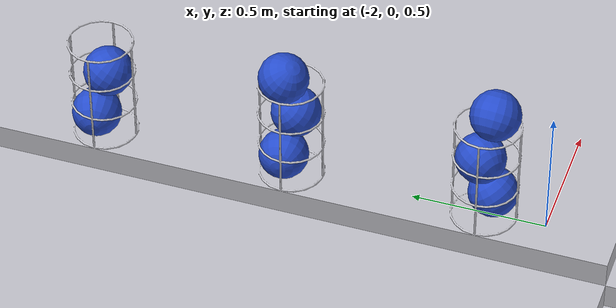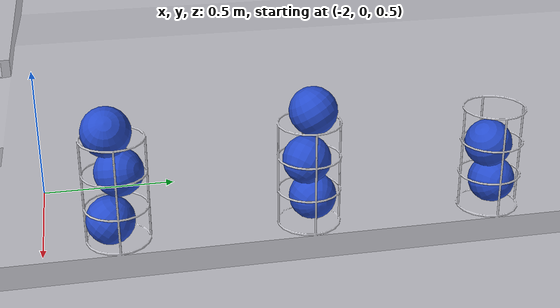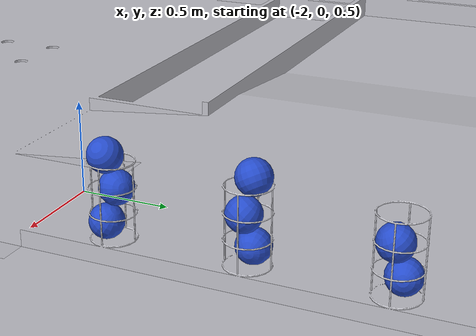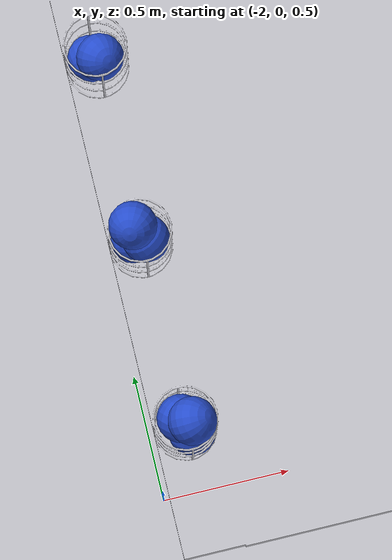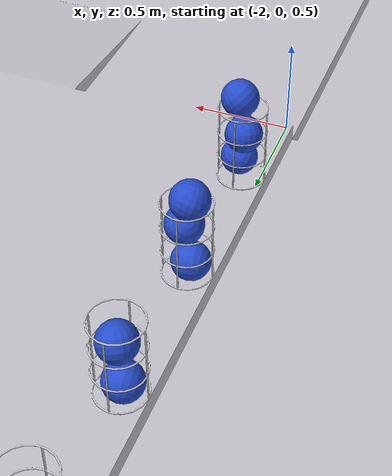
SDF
<sdf version="1.7">
 <world name="default">
  <model name="ground_plane">
   <static>1</static>
   <link name="link">
    <collision name="collision">
     <geometry><plane><normal>0 0 1</normal><size>100 100</size></plane></geometry>
     <surface><friction><ode><mu>100</mu><mu2>50</mu2></ode></friction></surface>
    </collision>
    <visual name="visual">
     <cast_shadows>0</cast_shadows>
     <geometry><plane><normal>0 0 1</normal><size>100 100</size></plane></geometry>
     <material>
      <script><uri>file://media/materials/scripts/gazebo.material</uri><name>Gazebo/Grey</name></script>
     </material>
    </visual>
   </link>
  </model>
  <model name="blue_ball">
   <link name="link">
    <inertial>
     <mass>0.3</mass>
     <inertia>
      <ixx>0.0029749</ixx>
      <ixy>0</ixy>
      <ixz>0</ixz>
      <iyy>0.0029749</iyy>
      <iyz>0</iyz>
      <izz>0.0029749</izz>
     </inertia>
    </inertial>
    <visual name="visual">
     <geometry><sphere><radius>0.095</radius></sphere></geometry>
     <material>
      <script><name>Gazebo/Blue</name><uri>file://media/materials/scripts/gazebo.material</uri></script>
      <shader type="pixel"><normal_map>__default__</normal_map></shader>
      <ambient>0.071 0.31 0.988 1</ambient>
      <diffuse>0.7 0.7 0.7 1</diffuse>
      <specular>0.01 0.01 0.01 1</specular>
      <emissive>0 0 0 1</emissive>
     </material>
    </visual>
    <collision name="collision">
     <geometry><sphere><radius>0.095</radius></sphere></geometry>
     <surface>
      <friction>
       <ode><mu>1</mu><mu2>1</mu2><fdir1>0 0 0</fdir1><slip1>0</slip1><slip2>0</slip2></ode>
       <torsional>
        <coefficient>1</coefficient>
        <patch_radius>0</patch_radius>
        <surface_radius>0</surface_radius>
        <use_patch_radius>1</use_patch_radius>
        <ode><slip>0</slip></ode>
       </torsional>
      </friction>
      <bounce><restitution_coefficient>0</restitution_coefficient><threshold>1e+06</threshold></bounce>
      <contact>
       <collide_without_contact>0</collide_without_contact>
       <collide_without_contact_bitmask>1</collide_without_contact_bitmask>
       <collide_bitmask>1</collide_bitmask>
       <ode>
        <soft_cfm>0</soft_cfm>
        <soft_erp>0.2</soft_erp>
        <kp>1e+13</kp>
        <kd>1</kd>
        <max_vel>0.01</max_vel>
        <min_depth>0</min_depth>
       </ode>
       <bullet>
        <split_impulse>1</split_impulse>
        <split_impulse_penetration_threshold>-0.01</split_impulse_penetration_threshold>
        <soft_cfm>0</soft_cfm>
        <soft_erp>0.2</soft_erp>
        <kp>1e+13</kp>
        <kd>1</kd>
       </bullet>
      </contact>
     </surface>
    </collision>
   </link>
   <static>0</static>
   <pose>-1.87471 1.04002 0.449335 -1.55224 0.285766 1.66311</pose>
  </model>
  <model name="blue_ball_clone">
   <link name="link">
    <inertial>
     <mass>0.3</mass>
     <inertia>
      <ixx>0.0029749</ixx>
      <ixy>0</ixy>
      <ixz>0</ixz>
      <iyy>0.0029749</iyy>
      <iyz>0</iyz>
      <izz>0.0029749</izz>
     </inertia>
    </inertial>
    <visual name="visual">
     <geometry><sphere><radius>0.095</radius></sphere></geometry>
     <material>
      <script><name>Gazebo/Blue</name><uri>file://media/materials/scripts/gazebo.material</uri></script>
      <shader type="pixel"><normal_map>__default__</normal_map></shader>
      <ambient>0.071 0.31 0.988 1</ambient>
      <diffuse>0.7 0.7 0.7 1</diffuse>
      <specular>0.01 0.01 0.01 1</specular>
      <emissive>0 0 0 1</emissive>
     </material>
    </visual>
    <collision name="collision">
     <geometry><sphere><radius>0.095</radius></sphere></geometry>
     <surface>
      <friction>
       <ode><mu>0.19</mu><mu2>0.19</mu2><fdir1>0 0 0</fdir1><slip1>0</slip1><slip2>0</slip2></ode>
       <torsional>
        <coefficient>1</coefficient>
        <patch_radius>0</patch_radius>
        <surface_radius>0</surface_radius>
        <use_patch_radius>1</use_patch_radius>
        <ode><slip>0</slip></ode>
       </torsional>
      </friction>
      <bounce><restitution_coefficient>0</restitution_coefficient><threshold>1e+06</threshold></bounce>
      <contact>
       <collide_without_contact>0</collide_without_contact>
       <collide_without_contact_bitmask>1</collide_without_contact_bitmask>
       <collide_bitmask>1</collide_bitmask>
       <ode>
        <soft_cfm>0</soft_cfm>
        <soft_erp>0.2</soft_erp>
        <kp>1e+13</kp>
        <kd>1</kd>
        <max_vel>0.01</max_vel>
        <min_depth>0</min_depth>
       </ode>
       <bullet>
        <split_impulse>1</split_impulse>
        <split_impulse_penetration_threshold>-0.01</split_impulse_penetration_threshold>
        <soft_cfm>0</soft_cfm>
        <soft_erp>0.2</soft_erp>
        <kp>1e+13</kp>
        <kd>1</kd>
       </bullet>
      </contact>
     </surface>
    </collision>
   </link>
   <static>0</static>
   <pose>-1.82988 1.00523 0.630661 -3.1414 0.771417 2.21019</pose>
  </model>
  <model name="blue_ball_clone_clone_clone">
   <link name="link">
    <inertial>
     <mass>0.3</mass>
     <inertia>
      <ixx>0.0029749</ixx>
      <ixy>0</ixy>
      <ixz>0</ixz>
      <iyy>0.0029749</iyy>
      <iyz>0</iyz>
      <izz>0.0029749</izz>
     </inertia>
    </inertial>
    <visual name="visual">
     <geometry><sphere><radius>0.095</radius></sphere></geometry>
     <material>
      <script><name>Gazebo/Blue</name><uri>file://media/materials/scripts/gazebo.material</uri></script>
      <shader type="pixel"><normal_map>__default__</normal_map></shader>
      <ambient>0.071 0.31 0.988 1</ambient>
      <diffuse>0.7 0.7 0.7 1</diffuse>
      <specular>0.01 0.01 0.01 1</specular>
      <emissive>0 0 0 1</emissive>
     </material>
    </visual>
    <collision name="collision">
     <geometry><sphere><radius>0.095</radius></sphere></geometry>
     <surface>
      <friction>
       <ode><mu>0.19</mu><mu2>0.19</mu2><fdir1>0 0 0</fdir1><slip1>0</slip1><slip2>0</slip2></ode>
       <torsional>
        <coefficient>1</coefficient>
        <patch_radius>0</patch_radius>
        <surface_radius>0</surface_radius>
        <use_patch_radius>1</use_patch_radius>
        <ode><slip>0</slip></ode>
       </torsional>
      </friction>
      <bounce><restitution_coefficient>0</restitution_coefficient><threshold>1e+06</threshold></bounce>
      <contact>
       <collide_without_contact>0</collide_without_contact>
       <collide_without_contact_bitmask>1</collide_without_contact_bitmask>
       <collide_bitmask>1</collide_bitmask>
       <ode>
        <soft_cfm>0</soft_cfm>
        <soft_erp>0.2</soft_erp>
        <kp>1e+13</kp>
        <kd>1</kd>
        <max_vel>0.01</max_vel>
        <min_depth>0</min_depth>
       </ode>
       <bullet>
        <split_impulse>1</split_impulse>
        <split_impulse_penetration_threshold>-0.01</split_impulse_penetration_threshold>
        <soft_cfm>0</soft_cfm>
        <soft_erp>0.2</soft_erp>
        <kp>1e+13</kp>
        <kd>1</kd>
       </bullet>
      </contact>
     </surface>
    </collision>
   </link>
   <static>0</static>
   <pose>-1.82726 0.242568 0.449507 0.11787 -0.659999 -1.84908</pose>
  </model>
  <model name="blue_ball_clone_clone_clone_0">
   <link name="link">
    <inertial>
     <mass>0.3</mass>
     <inertia>
      <ixx>0.0029749</ixx>
      <ixy>0</ixy>
      <ixz>0</ixz>
      <iyy>0.0029749</iyy>
      <iyz>0</iyz>
      <izz>0.0029749</izz>
     </inertia>
    </inertial>
    <visual name="visual">
     <geometry><sphere><radius>0.095</radius></sphere></geometry>
     <material>
      <script><name>Gazebo/Blue</name><uri>file://media/materials/scripts/gazebo.material</uri></script>
      <shader type="pixel"><normal_map>__default__</normal_map></shader>
      <ambient>0.071 0.31 0.988 1</ambient>
      <diffuse>0.7 0.7 0.7 1</diffuse>
      <specular>0.01 0.01 0.01 1</specular>
      <emissive>0 0 0 1</emissive>
     </material>
    </visual>
    <collision name="collision">
     <geometry><sphere><radius>0.095</radius></sphere></geometry>
     <surface>
      <friction>
       <ode><mu>0.19</mu><mu2>0.19</mu2><fdir1>0 0 0</fdir1><slip1>0</slip1><slip2>0</slip2></ode>
       <torsional>
        <coefficient>1</coefficient>
        <patch_radius>0</patch_radius>
        <surface_radius>0</surface_radius>
        <use_patch_radius>1</use_patch_radius>
        <ode><slip>0</slip></ode>
       </torsional>
      </friction>
      <bounce><restitution_coefficient>0</restitution_coefficient><threshold>1e+06</threshold></bounce>
      <contact>
       <collide_without_contact>0</collide_without_contact>
       <collide_without_contact_bitmask>1</collide_without_contact_bitmask>
       <collide_bitmask>1</collide_bitmask>
       <ode>
        <soft_cfm>0</soft_cfm>
        <soft_erp>0.2</soft_erp>
        <kp>1e+13</kp>
        <kd>1</kd>
        <max_vel>0.01</max_vel>
        <min_depth>0</min_depth>
       </ode>
       <bullet>
        <split_impulse>1</split_impulse>
        <split_impulse_penetration_threshold>-0.01</split_impulse_penetration_threshold>
        <soft_cfm>0</soft_cfm>
        <soft_erp>0.2</soft_erp>
        <kp>1e+13</kp>
        <kd>1</kd>
       </bullet>
      </contact>
     </surface>
    </collision>
   </link>
   <static>0</static>
   <pose>-1.86196 0.287273 0.63079 -2.12655 -1.05097 3.01774</pose>
  </model>
  <model name="blue_ball_clone_clone">
   <link name="link">
    <inertial>
     <mass>0.3</mass>
     <inertia>
      <ixx>0.0029749</ixx>
      <ixy>0</ixy>
      <ixz>0</ixz>
      <iyy>0.0029749</iyy>
      <iyz>0</iyz>
      <izz>0.0029749</izz>
     </inertia>
    </inertial>
    <visual name="visual">
     <geometry><sphere><radius>0.095</radius></sphere></geometry>
     <material>
      <script><name>Gazebo/Blue</name><uri>file://media/materials/scripts/gazebo.material</uri></script>
      <shader type="pixel"><normal_map>__default__</normal_map></shader>
      <ambient>0.071 0.31 0.988 1</ambient>
      <diffuse>0.7 0.7 0.7 1</diffuse>
      <specular>0.01 0.01 0.01 1</specular>
      <emissive>0 0 0 1</emissive>
     </material>
    </visual>
    <collision name="collision">
     <geometry><sphere><radius>0.095</radius></sphere></geometry>
     <surface>
      <friction>
       <ode><mu>0.09</mu><mu2>0.09</mu2><fdir1>0 0 0</fdir1><slip1>0</slip1><slip2>0</slip2></ode>
       <torsional>
        <coefficient>1</coefficient>
        <patch_radius>0</patch_radius>
        <surface_radius>0</surface_radius>
        <use_patch_radius>1</use_patch_radius>
        <ode><slip>0</slip></ode>
       </torsional>
      </friction>
      <bounce><restitution_coefficient>0</restitution_coefficient><threshold>1e+06</threshold></bounce>
      <contact>
       <collide_without_contact>0</collide_without_contact>
       <collide_without_contact_bitmask>1</collide_without_contact_bitmask>
       <collide_bitmask>1</collide_bitmask>
       <ode>
        <soft_cfm>0</soft_cfm>
        <soft_erp>0.2</soft_erp>
        <kp>1e+13</kp>
        <kd>1</kd>
        <max_vel>0.01</max_vel>
        <min_depth>0</min_depth>
       </ode>
       <bullet>
        <split_impulse>1</split_impulse>
        <split_impulse_penetration_threshold>-0.01</split_impulse_penetration_threshold>
        <soft_cfm>0</soft_cfm>
        <soft_erp>0.2</soft_erp>
        <kp>1e+13</kp>
        <kd>1</kd>
       </bullet>
      </contact>
     </surface>
    </collision>
   </link>
   <static>0</static>
   <pose>-1.87136 1.03819 0.812995 -0.476084 -0.331801 2.13087</pose>
  </model>
  <model name="blue_ball_clone_clone_clone_1">
   <link name="link">
    <inertial>
     <mass>0.3</mass>
     <inertia>
      <ixx>0.0029749</ixx>
      <ixy>0</ixy>
      <ixz>0</ixz>
      <iyy>0.0029749</iyy>
      <iyz>0</iyz>
      <izz>0.0029749</izz>
     </inertia>
    </inertial>
    <visual name="visual">
     <geometry><sphere><radius>0.095</radius></sphere></geometry>
     <material>
      <script><name>Gazebo/Blue</name><uri>file://media/materials/scripts/gazebo.material</uri></script>
      <shader type="pixel"><normal_map>__default__</normal_map></shader>
      <ambient>0.071 0.31 0.988 1</ambient>
      <diffuse>0.7 0.7 0.7 1</diffuse>
      <specular>0.01 0.01 0.01 1</specular>
      <emissive>0 0 0 1</emissive>
     </material>
    </visual>
    <collision name="collision">
     <geometry><sphere><radius>0.095</radius></sphere></geometry>
     <surface>
      <friction>
       <ode><mu>0.09</mu><mu2>0.09</mu2><fdir1>0 0 0</fdir1><slip1>0</slip1><slip2>0</slip2></ode>
       <torsional>
        <coefficient>1</coefficient>
        <patch_radius>0</patch_radius>
        <surface_radius>0</surface_radius>
        <use_patch_radius>1</use_patch_radius>
        <ode><slip>0</slip></ode>
       </torsional>
      </friction>
      <bounce><restitution_coefficient>0</restitution_coefficient><threshold>1e+06</threshold></bounce>
      <contact>
       <collide_without_contact>0</collide_without_contact>
       <collide_without_contact_bitmask>1</collide_without_contact_bitmask>
       <collide_bitmask>1</collide_bitmask>
       <ode>
        <soft_cfm>0</soft_cfm>
        <soft_erp>0.2</soft_erp>
        <kp>1e+13</kp>
        <kd>1</kd>
        <max_vel>0.01</max_vel>
        <min_depth>0</min_depth>
       </ode>
       <bullet>
        <split_impulse>1</split_impulse>
        <split_impulse_penetration_threshold>-0.01</split_impulse_penetration_threshold>
        <soft_cfm>0</soft_cfm>
        <soft_erp>0.2</soft_erp>
        <kp>1e+13</kp>
        <kd>1</kd>
       </bullet>
      </contact>
     </surface>
    </collision>
   </link>
   <static>0</static>
   <pose>-1.82523 0.24948 0.813336 -2.3042 0.069586 1.43497</pose>
  </model>
  <model name="blue_ball_clone_clone_clone_1_clone">
   <link name="link">
    <inertial>
     <mass>0.3</mass>
     <inertia>
      <ixx>0.0029749</ixx>
      <ixy>0</ixy>
      <ixz>0</ixz>
      <iyy>0.0029749</iyy>
      <iyz>0</iyz>
      <izz>0.0029749</izz>
     </inertia>
    </inertial>
    <visual name="visual">
     <geometry><sphere><radius>0.095</radius></sphere></geometry>
     <material>
      <script><name>Gazebo/Blue</name><uri>file://media/materials/scripts/gazebo.material</uri></script>
      <shader type="pixel"><normal_map>__default__</normal_map></shader>
      <ambient>0.071 0.31 0.988 1</ambient>
      <diffuse>0.7 0.7 0.7 1</diffuse>
      <specular>0.01 0.01 0.01 1</specular>
      <emissive>0 0 0 1</emissive>
     </material>
    </visual>
    <collision name="collision">
     <geometry><sphere><radius>0.095</radius></sphere></geometry>
     <surface>
      <friction>
       <ode><mu>0.09</mu><mu2>0.09</mu2><fdir1>0 0 0</fdir1><slip1>0</slip1><slip2>0</slip2></ode>
       <torsional>
        <coefficient>1</coefficient>
        <patch_radius>0</patch_radius>
        <surface_radius>0</surface_radius>
        <use_patch_radius>1</use_patch_radius>
        <ode><slip>0</slip></ode>
       </torsional>
      </friction>
      <bounce><restitution_coefficient>0</restitution_coefficient><threshold>1e+06</threshold></bounce>
      <contact>
       <collide_without_contact>0</collide_without_contact>
       <collide_without_contact_bitmask>1</collide_without_contact_bitmask>
       <collide_bitmask>1</collide_bitmask>
       <ode>
        <soft_cfm>0</soft_cfm>
        <soft_erp>0.2</soft_erp>
        <kp>1e+13</kp>
        <kd>1</kd>
        <max_vel>0.01</max_vel>
        <min_depth>0</min_depth>
       </ode>
       <bullet>
        <split_impulse>1</split_impulse>
        <split_impulse_penetration_threshold>-0.01</split_impulse_penetration_threshold>
        <soft_cfm>0</soft_cfm>
        <soft_erp>0.2</soft_erp>
        <kp>1e+13</kp>
        <kd>1</kd>
       </bullet>
      </contact>
     </surface>
    </collision>
   </link>
   <static>0</static>
   <pose>-1.8728 1.79184 0.449504 2.01102 1.04737 -1.01203</pose>
  </model>
  <model name="blue_ball_clone_clone_clone_1_clone_0">
   <link name="link">
    <inertial>
     <mass>0.3</mass>
     <inertia>
      <ixx>0.0029749</ixx>
      <ixy>0</ixy>
      <ixz>0</ixz>
      <iyy>0.0029749</iyy>
      <iyz>0</iyz>
      <izz>0.0029749</izz>
     </inertia>
    </inertial>
    <visual name="visual">
     <geometry><sphere><radius>0.095</radius></sphere></geometry>
     <material>
      <script><name>Gazebo/Blue</name><uri>file://media/materials/scripts/gazebo.material</uri></script>
      <shader type="pixel"><normal_map>__default__</normal_map></shader>
      <ambient>0.071 0.31 0.988 1</ambient>
      <diffuse>0.7 0.7 0.7 1</diffuse>
      <specular>0.01 0.01 0.01 1</specular>
      <emissive>0 0 0 1</emissive>
     </material>
    </visual>
    <collision name="collision">
     <geometry><sphere><radius>0.095</radius></sphere></geometry>
     <surface>
      <friction>
       <ode><mu>0.09</mu><mu2>0.09</mu2><fdir1>0 0 0</fdir1><slip1>0</slip1><slip2>0</slip2></ode>
       <torsional>
        <coefficient>1</coefficient>
        <patch_radius>0</patch_radius>
        <surface_radius>0</surface_radius>
        <use_patch_radius>1</use_patch_radius>
        <ode><slip>0</slip></ode>
       </torsional>
      </friction>
      <bounce><restitution_coefficient>0</restitution_coefficient><threshold>1e+06</threshold></bounce>
      <contact>
       <collide_without_contact>0</collide_without_contact>
       <collide_without_contact_bitmask>1</collide_without_contact_bitmask>
       <collide_bitmask>1</collide_bitmask>
       <ode>
        <soft_cfm>0</soft_cfm>
        <soft_erp>0.2</soft_erp>
        <kp>1e+13</kp>
        <kd>1</kd>
        <max_vel>0.01</max_vel>
        <min_depth>0</min_depth>
       </ode>
       <bullet>
        <split_impulse>1</split_impulse>
        <split_impulse_penetration_threshold>-0.01</split_impulse_penetration_threshold>
        <soft_cfm>0</soft_cfm>
        <soft_erp>0.2</soft_erp>
        <kp>1e+13</kp>
        <kd>1</kd>
       </bullet>
      </contact>
     </surface>
    </collision>
   </link>
   <static>0</static>
   <pose>-1.83599 1.74979 0.631098 3.04595 -0.614826 2.32706</pose>
  </model>
  <model name="arena_urdf">
   <link name="base_link">
    <inertial>
     <pose>0 0.646208 0.101866 0 -0 0</pose>
     <mass>117918</mass>
     <inertia>
      <ixx>1.19196e+06</ixx>
      <ixy>0</ixy>
      <ixz>0</ixz>
      <iyy>1.26446e+06</iyy>
      <iyz>0</iyz>
      <izz>2.45524e+06</izz>
     </inertia>
    </inertial>
    <self_collide>1</self_collide>
    <visual name="base_link_visual">
     <geometry><mesh><scale>0.001 0.001 0.001</scale><uri>walledArena.stl</uri></mesh></geometry>
     <material>
      <script><name>Gazebo/Silver</name><uri>file://media/materials/scripts/gazebo.material</uri></script>
      <shader type="pixel"><normal_map>__default__</normal_map></shader>
     </material>
    </visual>
    <collision name="base_link_collision">
     <geometry><mesh><uri>walledArena.stl</uri><scale>0.001 0.001 0.001</scale></mesh></geometry>
     <surface>
      <friction>
       <ode><mu>0.5</mu><mu2>0.5</mu2><fdir1>0 0 0</fdir1><slip1>0</slip1><slip2>0</slip2></ode>
       <torsional>
        <coefficient>1</coefficient>
        <patch_radius>0</patch_radius>
        <surface_radius>0</surface_radius>
        <use_patch_radius>1</use_patch_radius>
        <ode><slip>0</slip></ode>
       </torsional>
      </friction>
      <bounce><restitution_coefficient>0</restitution_coefficient><threshold>1e+06</threshold></bounce>
      <contact>
       <collide_without_contact>0</collide_without_contact>
       <collide_without_contact_bitmask>1</collide_without_contact_bitmask>
       <collide_bitmask>1</collide_bitmask>
       <ode>
        <soft_cfm>0</soft_cfm>
        <soft_erp>0.2</soft_erp>
        <kp>1e+13</kp>
        <kd>1</kd>
        <max_vel>0.01</max_vel>
        <min_depth>0</min_depth>
       </ode>
       <bullet>
        <split_impulse>1</split_impulse>
        <split_impulse_penetration_threshold>-0.01</split_impulse_penetration_threshold>
        <soft_cfm>0</soft_cfm>
        <soft_erp>0.2</soft_erp>
        <kp>1e+13</kp>
        <kd>1</kd>
       </bullet>
      </contact>
     </surface>
    </collision>
   </link>
   <static>0</static>
   <plugin name="control" filename="libgazebo_ros_control.so"/>
   <pose>-1.84834 -2.23111 -0 0 -0 0</pose>
  </model>
 </world>
</sdf>
